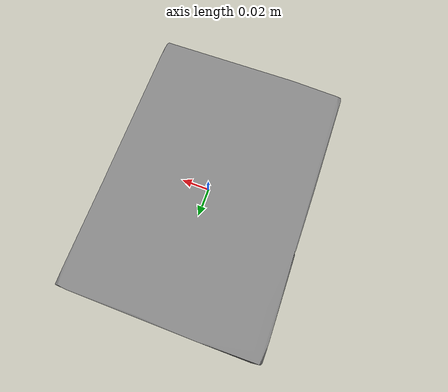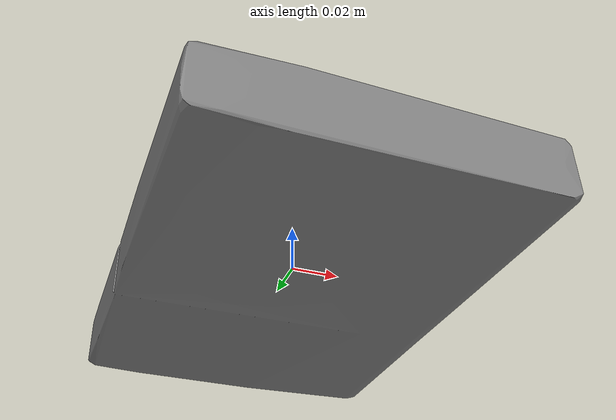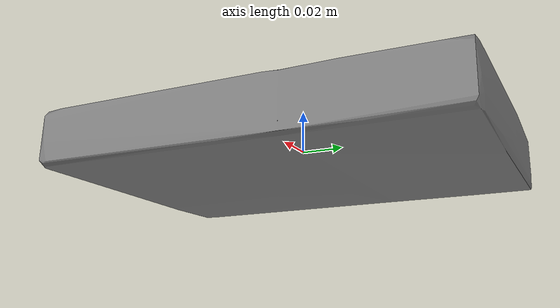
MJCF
<mujoco model="dvd_Little_House_on_the_Prairie_Season_Two_5_Discs_Includes_Digital_M">
  <default>
    <default class="visual">
      <geom group="2" type="mesh" contype="0" conaffinity="0" />
    </default>
    <default class="collision">
      <geom group="3" type="mesh" />
    </default>
  </default>
  <asset>
    <mesh file="dvd_Little_House_on_the_Prairie_Season_Two_5_Discs_Includes_Digital_M.stl" />
    <mesh file="dvd_Little_House_on_the_Prairie_Season_Two_5_Discs_Includes_Digital_M_collision_0.stl" />
    <mesh file="dvd_Little_House_on_the_Prairie_Season_Two_5_Discs_Includes_Digital_M_collision_1.stl" />
    <mesh file="dvd_Little_House_on_the_Prairie_Season_Two_5_Discs_Includes_Digital_M_collision_2.stl" />
    <mesh file="dvd_Little_House_on_the_Prairie_Season_Two_5_Discs_Includes_Digital_M_collision_3.stl" />
    <mesh file="dvd_Little_House_on_the_Prairie_Season_Two_5_Discs_Includes_Digital_M_collision_4.stl" />
    <mesh file="dvd_Little_House_on_the_Prairie_Season_Two_5_Discs_Includes_Digital_M_collision_5.stl" />
    <mesh file="dvd_Little_House_on_the_Prairie_Season_Two_5_Discs_Includes_Digital_M_collision_6.stl" />
    <mesh file="dvd_Little_House_on_the_Prairie_Season_Two_5_Discs_Includes_Digital_M_collision_7.stl" />
    <mesh file="dvd_Little_House_on_the_Prairie_Season_Two_5_Discs_Includes_Digital_M_collision_8.stl" />
    <mesh file="dvd_Little_House_on_the_Prairie_Season_Two_5_Discs_Includes_Digital_M_collision_9.stl" />
    <mesh file="dvd_Little_House_on_the_Prairie_Season_Two_5_Discs_Includes_Digital_M_collision_10.stl" />
    <mesh file="dvd_Little_House_on_the_Prairie_Season_Two_5_Discs_Includes_Digital_M_collision_11.stl" />
    <mesh file="dvd_Little_House_on_the_Prairie_Season_Two_5_Discs_Includes_Digital_M_collision_12.stl" />
    <mesh file="dvd_Little_House_on_the_Prairie_Season_Two_5_Discs_Includes_Digital_M_collision_13.stl" />
    <mesh file="dvd_Little_House_on_the_Prairie_Season_Two_5_Discs_Includes_Digital_M_collision_14.stl" />
    <mesh file="dvd_Little_House_on_the_Prairie_Season_Two_5_Discs_Includes_Digital_M_collision_15.stl" />
  </asset>
  <worldbody>
    <body name="dvd_Little_House_on_the_Prairie_Season_Two_5_Discs_Includes_Digital_M">
      <geom mesh="dvd_Little_House_on_the_Prairie_Season_Two_5_Discs_Includes_Digital_M" class="visual" />
      <geom mesh="dvd_Little_House_on_the_Prairie_Season_Two_5_Discs_Includes_Digital_M_collision_0" class="collision" />
      <geom mesh="dvd_Little_House_on_the_Prairie_Season_Two_5_Discs_Includes_Digital_M_collision_1" class="collision" />
      <geom mesh="dvd_Little_House_on_the_Prairie_Season_Two_5_Discs_Includes_Digital_M_collision_2" class="collision" />
      <geom mesh="dvd_Little_House_on_the_Prairie_Season_Two_5_Discs_Includes_Digital_M_collision_3" class="collision" />
      <geom mesh="dvd_Little_House_on_the_Prairie_Season_Two_5_Discs_Includes_Digital_M_collision_4" class="collision" />
      <geom mesh="dvd_Little_House_on_the_Prairie_Season_Two_5_Discs_Includes_Digital_M_collision_5" class="collision" />
      <geom mesh="dvd_Little_House_on_the_Prairie_Season_Two_5_Discs_Includes_Digital_M_collision_6" class="collision" />
      <geom mesh="dvd_Little_House_on_the_Prairie_Season_Two_5_Discs_Includes_Digital_M_collision_7" class="collision" />
      <geom mesh="dvd_Little_House_on_the_Prairie_Season_Two_5_Discs_Includes_Digital_M_collision_8" class="collision" />
      <geom mesh="dvd_Little_House_on_the_Prairie_Season_Two_5_Discs_Includes_Digital_M_collision_9" class="collision" />
      <geom mesh="dvd_Little_House_on_the_Prairie_Season_Two_5_Discs_Includes_Digital_M_collision_10" class="collision" />
      <geom mesh="dvd_Little_House_on_the_Prairie_Season_Two_5_Discs_Includes_Digital_M_collision_11" class="collision" />
      <geom mesh="dvd_Little_House_on_the_Prairie_Season_Two_5_Discs_Includes_Digital_M_collision_12" class="collision" />
      <geom mesh="dvd_Little_House_on_the_Prairie_Season_Two_5_Discs_Includes_Digital_M_collision_13" class="collision" />
      <geom mesh="dvd_Little_House_on_the_Prairie_Season_Two_5_Discs_Includes_Digital_M_collision_14" class="collision" />
      <geom mesh="dvd_Little_House_on_the_Prairie_Season_Two_5_Discs_Includes_Digital_M_collision_15" class="collision" />
    </body>
  </worldbody>
</mujoco>
